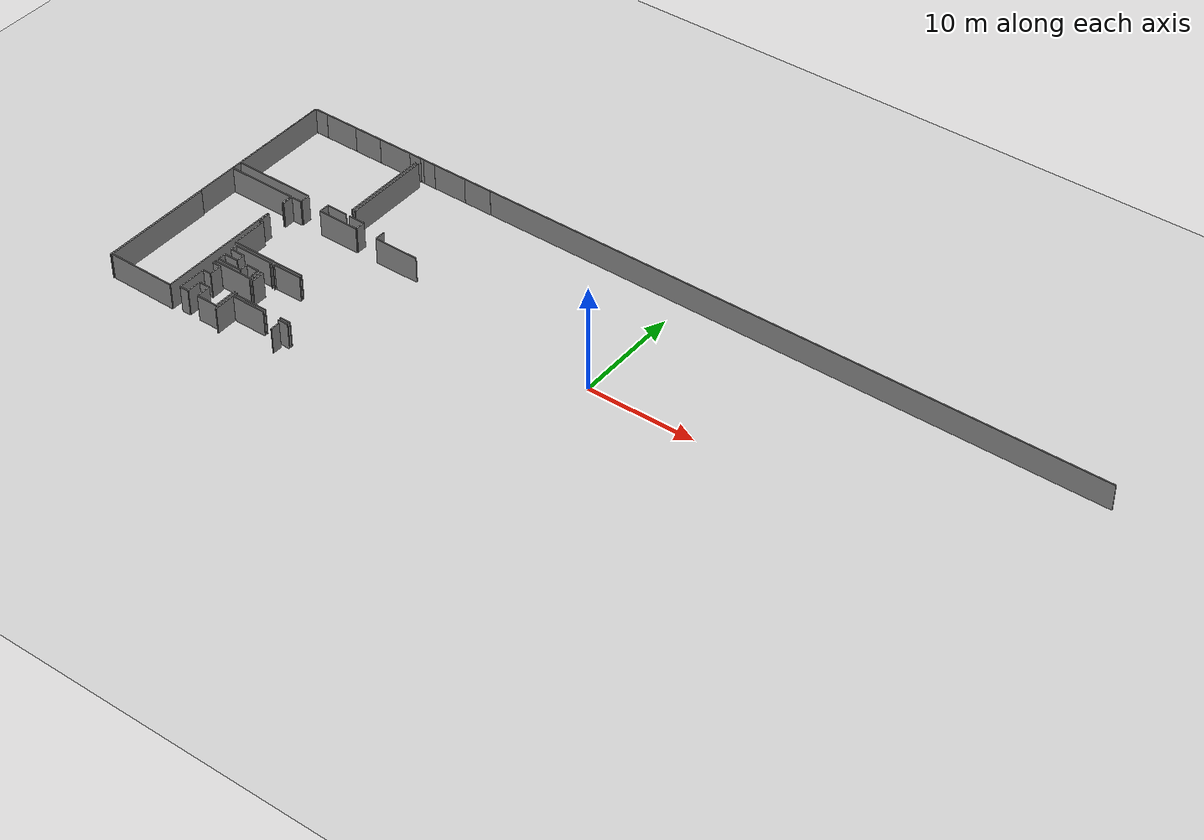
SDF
<sdf version="1.6">
 <world name="default">
  <model name="ground_plane">
   <static>1</static>
   <link name="link">
    <collision name="collision">
     <geometry><plane><normal>0 0 1</normal><size>100 100</size></plane></geometry>
     <surface><friction><ode><mu>100</mu><mu2>50</mu2></ode></friction></surface>
    </collision>
    <visual name="visual">
     <cast_shadows>0</cast_shadows>
     <geometry><plane><normal>0 0 1</normal><size>100 100</size></plane></geometry>
     <material>
      <script><uri>file://media/materials/scripts/gazebo.material</uri><name>Gazebo/Grey</name></script>
     </material>
    </visual>
   </link>
  </model>
  <model name="50052754">
   <static>1</static>
   <link name="Wall_0">
    <collision name="Wall_0_Collision">
     <geometry><box><size>7.62610542331 0.1 2.5</size></box></geometry>
     <pose>3.81305271165 0 1.25 0 0 0</pose>
    </collision>
    <visual name="Wall_0_Visual">
     <pose>3.81305271165 0 1.25 0 0 0</pose>
     <geometry><box><size>7.62610542331 0.1 2.5</size></box></geometry>
     <material>
      <script><uri>file://media/materials/scripts/gazebo.material</uri><name>Gazebo/Grey</name></script>
      <ambient>1 1 1 1</ambient>
     </material>
    </visual>
    <pose>0.0196519699515 -9.60017750166 0 0 0 0.0</pose>
   </link>
   <link name="Wall_1">
    <collision name="Wall_1_Collision">
     <geometry><box><size>0.898919141653 0.1 2.5</size></box></geometry>
     <pose>0.449459570826 0 1.25 0 0 0</pose>
    </collision>
    <visual name="Wall_1_Visual">
     <pose>0.449459570826 0 1.25 0 0 0</pose>
     <geometry><box><size>0.898919141653 0.1 2.5</size></box></geometry>
     <material>
      <script><uri>file://media/materials/scripts/gazebo.material</uri><name>Gazebo/Grey</name></script>
      <ambient>1 1 1 1</ambient>
     </material>
    </visual>
    <pose>7.64575739326 -9.60017750166 0 0 0 -1.57079632679</pose>
   </link>
   <link name="Wall_2">
    <collision name="Wall_2_Collision">
     <geometry><box><size>0.898919141653 0.1 2.5</size></box></geometry>
     <pose>0.449459570826 0 1.25 0 0 0</pose>
    </collision>
    <visual name="Wall_2_Visual">
     <pose>0.449459570826 0 1.25 0 0 0</pose>
     <geometry><box><size>0.898919141653 0.1 2.5</size></box></geometry>
     <material>
      <script><uri>file://media/materials/scripts/gazebo.material</uri><name>Gazebo/Grey</name></script>
      <ambient>1 1 1 1</ambient>
     </material>
    </visual>
    <pose>9.77691844432 -10.4990966433 0 0 0 1.57079632679</pose>
   </link>
   <link name="Wall_3">
    <collision name="Wall_3_Collision">
     <geometry><box><size>1.99131509715 0.1 2.5</size></box></geometry>
     <pose>0.995657548575 0 1.25 0 0 0</pose>
    </collision>
    <visual name="Wall_3_Visual">
     <pose>0.995657548575 0 1.25 0 0 0</pose>
     <geometry><box><size>1.99131509715 0.1 2.5</size></box></geometry>
     <material>
      <script><uri>file://media/materials/scripts/gazebo.material</uri><name>Gazebo/Grey</name></script>
      <ambient>1 1 1 1</ambient>
     </material>
    </visual>
    <pose>9.77691844432 -9.60017750166 0 0 0 0.0</pose>
   </link>
   <link name="Wall_4">
    <collision name="Wall_4_Collision">
     <geometry><box><size>8.11994041016 0.1 2.5</size></box></geometry>
     <pose>4.05997020508 0 1.25 0 0 0</pose>
    </collision>
    <visual name="Wall_4_Visual">
     <pose>4.05997020508 0 1.25 0 0 0</pose>
     <geometry><box><size>8.11994041016 0.1 2.5</size></box></geometry>
     <material>
      <script><uri>file://media/materials/scripts/gazebo.material</uri><name>Gazebo/Grey</name></script>
      <ambient>1 1 1 1</ambient>
     </material>
    </visual>
    <pose>11.7682335415 -8.86494025167 0 0 0 1.57079632679</pose>
   </link>
   <link name="Wall_5">
    <collision name="Wall_5_Collision">
     <geometry><box><size>1.19598085518 0.1 2.5</size></box></geometry>
     <pose>0.597990427589 0 1.25 0 0 0</pose>
    </collision>
    <visual name="Wall_5_Visual">
     <pose>0.597990427589 0 1.25 0 0 0</pose>
     <geometry><box><size>1.19598085518 0.1 2.5</size></box></geometry>
     <material>
      <script><uri>file://media/materials/scripts/gazebo.material</uri><name>Gazebo/Grey</name></script>
      <ambient>1 1 1 1</ambient>
     </material>
    </visual>
    <pose>11.7682335415 -0.00621255824273 0 0 0 3.14159265359</pose>
   </link>
   <link name="Wall_6">
    <collision name="Wall_6_Collision">
     <geometry><box><size>2.73111667565 0.1 2.5</size></box></geometry>
     <pose>1.36555833782 0 1.25 0 0 0</pose>
    </collision>
    <visual name="Wall_6_Visual">
     <pose>1.36555833782 0 1.25 0 0 0</pose>
     <geometry><box><size>2.73111667565 0.1 2.5</size></box></geometry>
     <material>
      <script><uri>file://media/materials/scripts/gazebo.material</uri><name>Gazebo/Grey</name></script>
      <ambient>1 1 1 1</ambient>
     </material>
    </visual>
    <pose>7.28783796634 -0.00621255824273 0 0 0 3.14159265359</pose>
   </link>
   <link name="Wall_7">
    <collision name="Wall_7_Collision">
     <geometry><box><size>1.3012139846 0.1 2.5</size></box></geometry>
     <pose>0.650606992298 0 1.25 0 0 0</pose>
    </collision>
    <visual name="Wall_7_Visual">
     <pose>0.650606992298 0 1.25 0 0 0</pose>
     <geometry><box><size>1.3012139846 0.1 2.5</size></box></geometry>
     <material>
      <script><uri>file://media/materials/scripts/gazebo.material</uri><name>Gazebo/Grey</name></script>
      <ambient>1 1 1 1</ambient>
     </material>
    </visual>
    <pose>1.3012139846 -0.00621255824273 0 0 0 3.14159265359</pose>
   </link>
   <link name="Wall_8">
    <collision name="Wall_8_Collision">
     <geometry><box><size>9.59398507063 0.1 2.5</size></box></geometry>
     <pose>4.79699253532 0 1.25 0 0 0</pose>
    </collision>
    <visual name="Wall_8_Visual">
     <pose>4.79699253532 0 1.25 0 0 0</pose>
     <geometry><box><size>9.59398507063 0.1 2.5</size></box></geometry>
     <material>
      <script><uri>file://media/materials/scripts/gazebo.material</uri><name>Gazebo/Grey</name></script>
      <ambient>1 1 1 1</ambient>
     </material>
    </visual>
    <pose>0.0 -0.00621255824273 0 0 0 -1.56874796175</pose>
   </link>
   <link name="Wall_9">
    <collision name="Wall_9_Collision">
     <geometry><box><size>8.12982978858 0.1 2.5</size></box></geometry>
     <pose>4.06491489429 0 1.25 0 0 0</pose>
    </collision>
    <visual name="Wall_9_Visual">
     <pose>4.06491489429 0 1.25 0 0 0</pose>
     <geometry><box><size>8.12982978858 0.1 2.5</size></box></geometry>
     <material>
      <script><uri>file://media/materials/scripts/gazebo.material</uri><name>Gazebo/Grey</name></script>
      <ambient>1 1 1 1</ambient>
     </material>
    </visual>
    <pose>12.0749310596 -8.86798313734 0 0 0 1.57079632679</pose>
   </link>
   <link name="Wall_10">
    <collision name="Wall_10_Collision">
     <geometry><box><size>1.21106849662 0.1 2.5</size></box></geometry>
     <pose>0.605534248312 0 1.25 0 0 0</pose>
    </collision>
    <visual name="Wall_10_Visual">
     <pose>0.605534248312 0 1.25 0 0 0</pose>
     <geometry><box><size>1.21106849662 0.1 2.5</size></box></geometry>
     <material>
      <script><uri>file://media/materials/scripts/gazebo.material</uri><name>Gazebo/Grey</name></script>
      <ambient>1 1 1 1</ambient>
     </material>
    </visual>
    <pose>12.0749310596 -0.00456432850487 0 0 0 0.0</pose>
   </link>
   <link name="Wall_11">
    <collision name="Wall_11_Collision">
     <geometry><box><size>2.72718628166 0.1 2.5</size></box></geometry>
     <pose>1.36359314083 0 1.25 0 0 0</pose>
    </collision>
    <visual name="Wall_11_Visual">
     <pose>1.36359314083 0 1.25 0 0 0</pose>
     <geometry><box><size>2.72718628166 0.1 2.5</size></box></geometry>
     <material>
      <script><uri>file://media/materials/scripts/gazebo.material</uri><name>Gazebo/Grey</name></script>
      <ambient>1 1 1 1</ambient>
     </material>
    </visual>
    <pose>16.535421091 -0.00456432850487 0 0 0 0.0</pose>
   </link>
   <link name="Wall_18">
    <collision name="Wall_18_Collision">
     <geometry><box><size>0.916035373546 0.1 2.5</size></box></geometry>
     <pose>0.458017686773 0 1.25 0 0 0</pose>
    </collision>
    <visual name="Wall_18_Visual">
     <pose>0.458017686773 0 1.25 0 0 0</pose>
     <geometry><box><size>0.916035373546 0.1 2.5</size></box></geometry>
     <material>
      <script><uri>file://media/materials/scripts/gazebo.material</uri><name>Gazebo/Grey</name></script>
      <ambient>1 1 1 1</ambient>
     </material>
    </visual>
    <pose>15.791055184 -9.60322038733 0 0 0 -1.57079632679</pose>
   </link>
   <link name="Wall_19">
    <collision name="Wall_19_Collision">
     <geometry><box><size>0.91185140575 0.1 2.5</size></box></geometry>
     <pose>0.455925702875 0 1.25 0 0 0</pose>
    </collision>
    <visual name="Wall_19_Visual">
     <pose>0.455925702875 0 1.25 0 0 0</pose>
     <geometry><box><size>0.91185140575 0.1 2.5</size></box></geometry>
     <material>
      <script><uri>file://media/materials/scripts/gazebo.material</uri><name>Gazebo/Grey</name></script>
      <ambient>1 1 1 1</ambient>
     </material>
    </visual>
    <pose>13.6631905924 -10.5192557609 0 0 0 1.57079632679</pose>
   </link>
   <link name="Wall_20">
    <collision name="Wall_20_Collision">
     <geometry><box><size>1.58827597442 0.1 2.5</size></box></geometry>
     <pose>0.794137987208 0 1.25 0 0 0</pose>
    </collision>
    <visual name="Wall_20_Visual">
     <pose>0.794137987208 0 1.25 0 0 0</pose>
     <geometry><box><size>1.58827597442 0.1 2.5</size></box></geometry>
     <material>
      <script><uri>file://media/materials/scripts/gazebo.material</uri><name>Gazebo/Grey</name></script>
      <ambient>1 1 1 1</ambient>
     </material>
    </visual>
    <pose>13.6631905924 -9.60740435513 0 0 0 3.13704251336</pose>
   </link>
   <link name="Wall_21">
    <collision name="Wall_21_Collision">
     <geometry><box><size>10.435576405 0.1 2.5</size></box></geometry>
     <pose>5.21778820248 0 1.25 0 0 0</pose>
    </collision>
    <visual name="Wall_21_Visual">
     <pose>5.21778820248 0 1.25 0 0 0</pose>
     <geometry><box><size>10.435576405 0.1 2.5</size></box></geometry>
     <material>
      <script><uri>file://media/materials/scripts/gazebo.material</uri><name>Gazebo/Grey</name></script>
      <ambient>1 1 1 1</ambient>
     </material>
    </visual>
    <pose>0.0877365368157 -24.9205997021 0 0 0 1.57079632679</pose>
   </link>
   <link name="Wall_22">
    <collision name="Wall_22_Collision">
     <geometry><box><size>6.44077466798 0.1 2.5</size></box></geometry>
     <pose>3.22038733399 0 1.25 0 0 0</pose>
    </collision>
    <visual name="Wall_22_Visual">
     <pose>3.22038733399 0 1.25 0 0 0</pose>
     <geometry><box><size>6.44077466798 0.1 2.5</size></box></geometry>
     <material>
      <script><uri>file://media/materials/scripts/gazebo.material</uri><name>Gazebo/Grey</name></script>
      <ambient>1 1 1 1</ambient>
     </material>
    </visual>
    <pose>0.0877365368157 -10.5570382579 0 0 0 0.0</pose>
   </link>
   <link name="Wall_23">
    <collision name="Wall_23_Collision">
     <geometry><box><size>1.06868680465 0.1 2.5</size></box></geometry>
     <pose>0.534343402327 0 1.25 0 0 0</pose>
    </collision>
    <visual name="Wall_23_Visual">
     <pose>0.534343402327 0 1.25 0 0 0</pose>
     <geometry><box><size>1.06868680465 0.1 2.5</size></box></geometry>
     <material>
      <script><uri>file://media/materials/scripts/gazebo.material</uri><name>Gazebo/Grey</name></script>
      <ambient>1 1 1 1</ambient>
     </material>
    </visual>
    <pose>6.52851120479 -10.5570382579 0 0 0 -1.57079632679</pose>
   </link>
   <link name="Wall_24">
    <collision name="Wall_24_Collision">
     <geometry><box><size>11.5982123047 0.1 2.5</size></box></geometry>
     <pose>5.79910615233 0 1.25 0 0 0</pose>
    </collision>
    <visual name="Wall_24_Visual">
     <pose>5.79910615233 0 1.25 0 0 0</pose>
     <geometry><box><size>11.5982123047 0.1 2.5</size></box></geometry>
     <material>
      <script><uri>file://media/materials/scripts/gazebo.material</uri><name>Gazebo/Grey</name></script>
      <ambient>1 1 1 1</ambient>
     </material>
    </visual>
    <pose>6.52851120479 -13.3700592729 0 0 0 -1.57079632679</pose>
   </link>
   <link name="Wall_25">
    <collision name="Wall_25_Collision">
     <geometry><box><size>6.44095108904 0.1 2.5</size></box></geometry>
     <pose>3.22047554452 0 1.25 0 0 0</pose>
    </collision>
    <visual name="Wall_25_Visual">
     <pose>3.22047554452 0 1.25 0 0 0</pose>
     <geometry><box><size>6.44095108904 0.1 2.5</size></box></geometry>
     <material>
      <script><uri>file://media/materials/scripts/gazebo.material</uri><name>Gazebo/Grey</name></script>
      <ambient>1 1 1 1</ambient>
     </material>
    </visual>
    <pose>6.52851120479 -24.9682715775 0 0 0 3.13419121394</pose>
   </link>
   <link name="Wall_26">
    <collision name="Wall_26_Collision">
     <geometry><box><size>3.30837744461 0.1 2.5</size></box></geometry>
     <pose>1.6541887223 0 1.25 0 0 0</pose>
    </collision>
    <visual name="Wall_26_Visual">
     <pose>1.6541887223 0 1.25 0 0 0</pose>
     <geometry><box><size>3.30837744461 0.1 2.5</size></box></geometry>
     <material>
      <script><uri>file://media/materials/scripts/gazebo.material</uri><name>Gazebo/Grey</name></script>
      <ambient>1 1 1 1</ambient>
     </material>
    </visual>
    <pose>6.9903958921 -17.7928935941 0 0 0 1.57079632679</pose>
   </link>
   <link name="Wall_27">
    <collision name="Wall_27_Collision">
     <geometry><box><size>0.326983422612 0.1 2.5</size></box></geometry>
     <pose>0.163491711306 0 1.25 0 0 0</pose>
    </collision>
    <visual name="Wall_27_Visual">
     <pose>0.163491711306 0 1.25 0 0 0</pose>
     <geometry><box><size>0.326983422612 0.1 2.5</size></box></geometry>
     <material>
      <script><uri>file://media/materials/scripts/gazebo.material</uri><name>Gazebo/Grey</name></script>
      <ambient>1 1 1 1</ambient>
     </material>
    </visual>
    <pose>6.9903958921 -14.4845161495 0 0 0 3.14159265359</pose>
   </link>
   <link name="Wall_28">
    <collision name="Wall_28_Collision">
     <geometry><box><size>1.09708707091 0.1 2.5</size></box></geometry>
     <pose>0.548543535453 0 1.25 0 0 0</pose>
    </collision>
    <visual name="Wall_28_Visual">
     <pose>0.548543535453 0 1.25 0 0 0</pose>
     <geometry><box><size>1.09708707091 0.1 2.5</size></box></geometry>
     <material>
      <script><uri>file://media/materials/scripts/gazebo.material</uri><name>Gazebo/Grey</name></script>
      <ambient>1 1 1 1</ambient>
     </material>
    </visual>
    <pose>6.66341246949 -14.4845161495 0 0 0 1.57079632679</pose>
   </link>
   <link name="Wall_29">
    <collision name="Wall_29_Collision">
     <geometry><box><size>1.06767250943 0.1 2.5</size></box></geometry>
     <pose>0.533836254715 0 1.25 0 0 0</pose>
    </collision>
    <visual name="Wall_29_Visual">
     <pose>0.533836254715 0 1.25 0 0 0</pose>
     <geometry><box><size>1.06767250943 0.1 2.5</size></box></geometry>
     <material>
      <script><uri>file://media/materials/scripts/gazebo.material</uri><name>Gazebo/Grey</name></script>
      <ambient>1 1 1 1</ambient>
     </material>
    </visual>
    <pose>6.66341246949 -11.6342197851 0 0 0 1.57079632679</pose>
   </link>
   <link name="Wall_30">
    <collision name="Wall_30_Collision">
     <geometry><box><size>0.96801800374 0.1 2.5</size></box></geometry>
     <pose>0.48400900187 0 1.25 0 0 0</pose>
    </collision>
    <visual name="Wall_30_Visual">
     <pose>0.48400900187 0 1.25 0 0 0</pose>
     <geometry><box><size>0.96801800374 0.1 2.5</size></box></geometry>
     <material>
      <script><uri>file://media/materials/scripts/gazebo.material</uri><name>Gazebo/Grey</name></script>
      <ambient>1 1 1 1</ambient>
     </material>
    </visual>
    <pose>6.66341246949 -10.5665472757 0 0 0 0.0</pose>
   </link>
   <link name="Wall_31">
    <collision name="Wall_31_Collision">
     <geometry><box><size>3.87942565533 0.1 2.5</size></box></geometry>
     <pose>1.93971282766 0 1.25 0 0 0</pose>
    </collision>
    <visual name="Wall_31_Visual">
     <pose>1.93971282766 0 1.25 0 0 0</pose>
     <geometry><box><size>3.87942565533 0.1 2.5</size></box></geometry>
     <material>
      <script><uri>file://media/materials/scripts/gazebo.material</uri><name>Gazebo/Grey</name></script>
      <ambient>1 1 1 1</ambient>
     </material>
    </visual>
    <pose>9.7713398206 -10.5665472757 0 0 0 0.0</pose>
   </link>
   <link name="Wall_32">
    <collision name="Wall_32_Collision">
     <geometry><box><size>4.22720213002 0.1 2.5</size></box></geometry>
     <pose>2.11360106501 0 1.25 0 0 0</pose>
    </collision>
    <visual name="Wall_32_Visual">
     <pose>2.11360106501 0 1.25 0 0 0</pose>
     <geometry><box><size>4.22720213002 0.1 2.5</size></box></geometry>
     <material>
      <script><uri>file://media/materials/scripts/gazebo.material</uri><name>Gazebo/Grey</name></script>
      <ambient>1 1 1 1</ambient>
     </material>
    </visual>
    <pose>15.802846366 -10.5665472757 0 0 0 0.0</pose>
   </link>
   <link name="Wall_38">
    <collision name="Wall_38_Collision">
     <geometry><box><size>7.16105537787 0.1 2.5</size></box></geometry>
     <pose>3.58052768894 0 1.25 0 0 0</pose>
    </collision>
    <visual name="Wall_38_Visual">
     <pose>3.58052768894 0 1.25 0 0 0</pose>
     <geometry><box><size>7.16105537787 0.1 2.5</size></box></geometry>
     <material>
      <script><uri>file://media/materials/scripts/gazebo.material</uri><name>Gazebo/Grey</name></script>
      <ambient>1 1 1 1</ambient>
     </material>
    </visual>
    <pose>14.1514469555 -17.7850328061 0 0 0 -3.14049493976</pose>
   </link>
   <link name="Wall_44">
    <collision name="Wall_44_Collision">
     <geometry><box><size>3.26945386542 0.1 2.5</size></box></geometry>
     <pose>1.63472693271 0 1.25 0 0 0</pose>
    </collision>
    <visual name="Wall_44_Visual">
     <pose>1.63472693271 0 1.25 0 0 0</pose>
     <geometry><box><size>3.26945386542 0.1 2.5</size></box></geometry>
     <material>
      <script><uri>file://media/materials/scripts/gazebo.material</uri><name>Gazebo/Grey</name></script>
      <ambient>1 1 1 1</ambient>
     </material>
    </visual>
    <pose>11.4441662176 -22.7137468699 0 0 0 0.0</pose>
   </link>
   <link name="Wall_45">
    <collision name="Wall_45_Collision">
     <geometry><box><size>1.03445434087 0.1 2.5</size></box></geometry>
     <pose>0.517227170433 0 1.25 0 0 0</pose>
    </collision>
    <visual name="Wall_45_Visual">
     <pose>0.517227170433 0 1.25 0 0 0</pose>
     <geometry><box><size>1.03445434087 0.1 2.5</size></box></geometry>
     <material>
      <script><uri>file://media/materials/scripts/gazebo.material</uri><name>Gazebo/Grey</name></script>
      <ambient>1 1 1 1</ambient>
     </material>
    </visual>
    <pose>16.270309677 -22.7137468699 0 0 0 0.0</pose>
   </link>
   <link name="Wall_49">
    <collision name="Wall_49_Collision">
     <geometry><box><size>2.70258962249 0.1 2.5</size></box></geometry>
     <pose>1.35129481125 0 1.25 0 0 0</pose>
    </collision>
    <visual name="Wall_49_Visual">
     <pose>1.35129481125 0 1.25 0 0 0</pose>
     <geometry><box><size>2.70258962249 0.1 2.5</size></box></geometry>
     <material>
      <script><uri>file://media/materials/scripts/gazebo.material</uri><name>Gazebo/Grey</name></script>
      <ambient>1 1 1 1</ambient>
     </material>
    </visual>
    <pose>14.1752828933 -18.0639639925 0 0 0 3.14159265359</pose>
   </link>
   <link name="Wall_50">
    <collision name="Wall_50_Collision">
     <geometry><box><size>0.214523439729 0.1 2.5</size></box></geometry>
     <pose>0.107261719864 0 1.25 0 0 0</pose>
    </collision>
    <visual name="Wall_50_Visual">
     <pose>0.107261719864 0 1.25 0 0 0</pose>
     <geometry><box><size>0.214523439729 0.1 2.5</size></box></geometry>
     <material>
      <script><uri>file://media/materials/scripts/gazebo.material</uri><name>Gazebo/Grey</name></script>
      <ambient>1 1 1 1</ambient>
     </material>
    </visual>
    <pose>11.4726932708 -18.0639639925 0 0 0 -1.57079632679</pose>
   </link>
   <link name="Wall_51">
    <collision name="Wall_51_Collision">
     <geometry><box><size>1.28904244192 0.1 2.5</size></box></geometry>
     <pose>0.644521220958 0 1.25 0 0 0</pose>
    </collision>
    <visual name="Wall_51_Visual">
     <pose>0.644521220958 0 1.25 0 0 0</pose>
     <geometry><box><size>1.28904244192 0.1 2.5</size></box></geometry>
     <material>
      <script><uri>file://media/materials/scripts/gazebo.material</uri><name>Gazebo/Grey</name></script>
      <ambient>1 1 1 1</ambient>
     </material>
    </visual>
    <pose>11.4726932708 -19.4303464452 0 0 0 -1.57079632679</pose>
   </link>
   <link name="Wall_52">
    <collision name="Wall_52_Collision">
     <geometry><box><size>0.218800034224 0.1 2.5</size></box></geometry>
     <pose>0.109400017112 0 1.25 0 0 0</pose>
    </collision>
    <visual name="Wall_52_Visual">
     <pose>0.109400017112 0 1.25 0 0 0</pose>
     <geometry><box><size>0.218800034224 0.1 2.5</size></box></geometry>
     <material>
      <script><uri>file://media/materials/scripts/gazebo.material</uri><name>Gazebo/Grey</name></script>
      <ambient>1 1 1 1</ambient>
     </material>
    </visual>
    <pose>11.4726932708 -22.4968144791 0 0 0 -1.70154812908</pose>
   </link>
   <link name="Wall_60">
    <collision name="Wall_60_Collision">
     <geometry><box><size>2.01832070747 0.1 2.5</size></box></geometry>
     <pose>1.00916035374 0 1.25 0 0 0</pose>
    </collision>
    <visual name="Wall_60_Visual">
     <pose>1.00916035374 0 1.25 0 0 0</pose>
     <geometry><box><size>2.01832070747 0.1 2.5</size></box></geometry>
     <material>
      <script><uri>file://media/materials/scripts/gazebo.material</uri><name>Gazebo/Grey</name></script>
      <ambient>1 1 1 1</ambient>
     </material>
    </visual>
    <pose>11.498557799 -25.0040254842 0 0 0 1.57079632679</pose>
   </link>
   <link name="Wall_61">
    <collision name="Wall_61_Collision">
     <geometry><box><size>3.22558559701 0.1 2.5</size></box></geometry>
     <pose>1.6127927985 0 1.25 0 0 0</pose>
    </collision>
    <visual name="Wall_61_Visual">
     <pose>1.6127927985 0 1.25 0 0 0</pose>
     <geometry><box><size>3.22558559701 0.1 2.5</size></box></geometry>
     <material>
      <script><uri>file://media/materials/scripts/gazebo.material</uri><name>Gazebo/Grey</name></script>
      <ambient>1 1 1 1</ambient>
     </material>
    </visual>
    <pose>11.498557799 -22.9857047767 0 0 0 0.0</pose>
   </link>
   <link name="Wall_62">
    <collision name="Wall_62_Collision">
     <geometry><box><size>0.997559352119 0.1 2.5</size></box></geometry>
     <pose>0.498779676059 0 1.25 0 0 0</pose>
    </collision>
    <visual name="Wall_62_Visual">
     <pose>0.498779676059 0 1.25 0 0 0</pose>
     <geometry><box><size>0.997559352119 0.1 2.5</size></box></geometry>
     <material>
      <script><uri>file://media/materials/scripts/gazebo.material</uri><name>Gazebo/Grey</name></script>
      <ambient>1 1 1 1</ambient>
     </material>
    </visual>
    <pose>16.2917366636 -22.9857047767 0 0 0 0.0</pose>
   </link>
   <link name="Wall_65">
    <collision name="Wall_65_Collision">
     <geometry><box><size>0.882563631177 0.1 2.5</size></box></geometry>
     <pose>0.441281815588 0 1.25 0 0 0</pose>
    </collision>
    <visual name="Wall_65_Visual">
     <pose>0.441281815588 0 1.25 0 0 0</pose>
     <geometry><box><size>0.882563631177 0.1 2.5</size></box></geometry>
     <material>
      <script><uri>file://media/materials/scripts/gazebo.material</uri><name>Gazebo/Grey</name></script>
      <ambient>1 1 1 1</ambient>
     </material>
    </visual>
    <pose>16.6316523503 -23.3120542648 0 0 0 -1.57079632679</pose>
   </link>
   <link name="Wall_69">
    <collision name="Wall_69_Collision">
     <geometry><box><size>2.65669276364 0.1 2.5</size></box></geometry>
     <pose>1.32834638182 0 1.25 0 0 0</pose>
    </collision>
    <visual name="Wall_69_Visual">
     <pose>1.32834638182 0 1.25 0 0 0</pose>
     <geometry><box><size>2.65669276364 0.1 2.5</size></box></geometry>
     <material>
      <script><uri>file://media/materials/scripts/gazebo.material</uri><name>Gazebo/Grey</name></script>
      <ambient>1 1 1 1</ambient>
     </material>
    </visual>
    <pose>7.35085105709 -24.6567561571 0 0 0 1.57079632679</pose>
   </link>
   <link name="Wall_70">
    <collision name="Wall_70_Collision">
     <geometry><box><size>0.783289486196 0.1 2.5</size></box></geometry>
     <pose>0.391644743098 0 1.25 0 0 0</pose>
    </collision>
    <visual name="Wall_70_Visual">
     <pose>0.391644743098 0 1.25 0 0 0</pose>
     <geometry><box><size>0.783289486196 0.1 2.5</size></box></geometry>
     <material>
      <script><uri>file://media/materials/scripts/gazebo.material</uri><name>Gazebo/Grey</name></script>
      <ambient>1 1 1 1</ambient>
     </material>
    </visual>
    <pose>7.35085105709 -22.0000633935 0 0 0 0.0</pose>
   </link>
   <link name="Wall_71">
    <collision name="Wall_71_Collision">
     <geometry><box><size>1.16466449016 0.1 2.5</size></box></geometry>
     <pose>0.582332245079 0 1.25 0 0 0</pose>
    </collision>
    <visual name="Wall_71_Visual">
     <pose>0.582332245079 0 1.25 0 0 0</pose>
     <geometry><box><size>1.16466449016 0.1 2.5</size></box></geometry>
     <material>
      <script><uri>file://media/materials/scripts/gazebo.material</uri><name>Gazebo/Grey</name></script>
      <ambient>1 1 1 1</ambient>
     </material>
    </visual>
    <pose>8.13414054328 -22.0000633935 0 0 0 1.57079632679</pose>
   </link>
   <link name="Wall_72">
    <collision name="Wall_72_Collision">
     <geometry><box><size>0.787473453992 0.1 2.5</size></box></geometry>
     <pose>0.393736726996 0 1.25 0 0 0</pose>
    </collision>
    <visual name="Wall_72_Visual">
     <pose>0.393736726996 0 1.25 0 0 0</pose>
     <geometry><box><size>0.787473453992 0.1 2.5</size></box></geometry>
     <material>
      <script><uri>file://media/materials/scripts/gazebo.material</uri><name>Gazebo/Grey</name></script>
      <ambient>1 1 1 1</ambient>
     </material>
    </visual>
    <pose>8.13414054328 -20.8353989033 0 0 0 3.14159265359</pose>
   </link>
   <link name="Wall_73">
    <collision name="Wall_73_Collision">
     <geometry><box><size>0.298456369457 0.1 2.5</size></box></geometry>
     <pose>0.149228184729 0 1.25 0 0 0</pose>
    </collision>
    <visual name="Wall_73_Visual">
     <pose>0.149228184729 0 1.25 0 0 0</pose>
     <geometry><box><size>0.298456369457 0.1 2.5</size></box></geometry>
     <material>
      <script><uri>file://media/materials/scripts/gazebo.material</uri><name>Gazebo/Grey</name></script>
      <ambient>1 1 1 1</ambient>
     </material>
    </visual>
    <pose>7.34666708929 -20.8353989033 0 0 0 1.57079632679</pose>
   </link>
   <link name="Wall_74">
    <collision name="Wall_74_Collision">
     <geometry><box><size>3.85863260325 0.1 2.5</size></box></geometry>
     <pose>1.92931630163 0 1.25 0 0 0</pose>
    </collision>
    <visual name="Wall_74_Visual">
     <pose>1.92931630163 0 1.25 0 0 0</pose>
     <geometry><box><size>3.85863260325 0.1 2.5</size></box></geometry>
     <material>
      <script><uri>file://media/materials/scripts/gazebo.material</uri><name>Gazebo/Grey</name></script>
      <ambient>1 1 1 1</ambient>
     </material>
    </visual>
    <pose>7.34666708929 -20.5369425338 0 0 0 0.0</pose>
   </link>
   <link name="Wall_75">
    <collision name="Wall_75_Collision">
     <geometry><box><size>0.190687501981 0.1 2.5</size></box></geometry>
     <pose>0.0953437509905 0 1.25 0 0 0</pose>
    </collision>
    <visual name="Wall_75_Visual">
     <pose>0.0953437509905 0 1.25 0 0 0</pose>
     <geometry><box><size>0.190687501981 0.1 2.5</size></box></geometry>
     <material>
      <script><uri>file://media/materials/scripts/gazebo.material</uri><name>Gazebo/Grey</name></script>
      <ambient>1 1 1 1</ambient>
     </material>
    </visual>
    <pose>11.2052996925 -20.5369425338 0 0 0 -1.57079632679</pose>
   </link>
   <link name="Wall_76">
    <collision name="Wall_76_Collision">
     <geometry><box><size>2.18200259913 0.1 2.5</size></box></geometry>
     <pose>1.09100129957 0 1.25 0 0 0</pose>
    </collision>
    <visual name="Wall_76_Visual">
     <pose>1.09100129957 0 1.25 0 0 0</pose>
     <geometry><box><size>2.18200259913 0.1 2.5</size></box></geometry>
     <material>
      <script><uri>file://media/materials/scripts/gazebo.material</uri><name>Gazebo/Grey</name></script>
      <ambient>1 1 1 1</ambient>
     </material>
    </visual>
    <pose>11.2052996925 -22.4739928365 0 0 0 -1.57079632679</pose>
   </link>
   <link name="Wall_77">
    <collision name="Wall_77_Collision">
     <geometry><box><size>1.98713112935 0.1 2.5</size></box></geometry>
     <pose>0.993565564677 0 1.25 0 0 0</pose>
    </collision>
    <visual name="Wall_77_Visual">
     <pose>0.993565564677 0 1.25 0 0 0</pose>
     <geometry><box><size>1.98713112935 0.1 2.5</size></box></geometry>
     <material>
      <script><uri>file://media/materials/scripts/gazebo.material</uri><name>Gazebo/Grey</name></script>
      <ambient>1 1 1 1</ambient>
     </material>
    </visual>
    <pose>11.2052996925 -24.6559954357 0 0 0 3.14159265359</pose>
   </link>
   <link name="Wall_78">
    <collision name="Wall_78_Collision">
     <geometry><box><size>1.33468572696 0.1 2.5</size></box></geometry>
     <pose>0.667342863482 0 1.25 0 0 0</pose>
    </collision>
    <visual name="Wall_78_Visual">
     <pose>0.667342863482 0 1.25 0 0 0</pose>
     <geometry><box><size>1.33468572696 0.1 2.5</size></box></geometry>
     <material>
      <script><uri>file://media/materials/scripts/gazebo.material</uri><name>Gazebo/Grey</name></script>
      <ambient>1 1 1 1</ambient>
     </material>
    </visual>
    <pose>9.21816856319 -24.6559954357 0 0 0 1.57079632679</pose>
   </link>
   <link name="Wall_79">
    <collision name="Wall_79_Collision">
     <geometry><box><size>1.02950965165 0.1 2.5</size></box></geometry>
     <pose>0.514754825826 0 1.25 0 0 0</pose>
    </collision>
    <visual name="Wall_79_Visual">
     <pose>0.514754825826 0 1.25 0 0 0</pose>
     <geometry><box><size>1.02950965165 0.1 2.5</size></box></geometry>
     <material>
      <script><uri>file://media/materials/scripts/gazebo.material</uri><name>Gazebo/Grey</name></script>
      <ambient>1 1 1 1</ambient>
     </material>
    </visual>
    <pose>9.21816856319 -23.3213097087 0 0 0 3.14159265359</pose>
   </link>
   <link name="Wall_80">
    <collision name="Wall_80_Collision">
     <geometry><box><size>1.33937684237 0.1 2.5</size></box></geometry>
     <pose>0.669688421186 0 1.25 0 0 0</pose>
    </collision>
    <visual name="Wall_80_Visual">
     <pose>0.669688421186 0 1.25 0 0 0</pose>
     <geometry><box><size>1.33937684237 0.1 2.5</size></box></geometry>
     <material>
      <script><uri>file://media/materials/scripts/gazebo.material</uri><name>Gazebo/Grey</name></script>
      <ambient>1 1 1 1</ambient>
     </material>
    </visual>
    <pose>8.18865891153 -23.3213097087 0 0 0 -1.57079632679</pose>
   </link>
   <link name="Wall_81">
    <collision name="Wall_81_Collision">
     <geometry><box><size>0.837817073694 0.1 2.5</size></box></geometry>
     <pose>0.418908536847 0 1.25 0 0 0</pose>
    </collision>
    <visual name="Wall_81_Visual">
     <pose>0.418908536847 0 1.25 0 0 0</pose>
     <geometry><box><size>0.837817073694 0.1 2.5</size></box></geometry>
     <material>
      <script><uri>file://media/materials/scripts/gazebo.material</uri><name>Gazebo/Grey</name></script>
      <ambient>1 1 1 1</ambient>
     </material>
    </visual>
    <pose>8.18865891153 -24.6606865511 0 0 0 3.13690140471</pose>
   </link>
   <link name="Wall_82">
    <collision name="Wall_82_Collision">
     <geometry><box><size>0.757805318711 0.1 2.5</size></box></geometry>
     <pose>0.378902659355 0 1.25 0 0 0</pose>
    </collision>
    <visual name="Wall_82_Visual">
     <pose>0.378902659355 0 1.25 0 0 0</pose>
     <geometry><box><size>0.757805318711 0.1 2.5</size></box></geometry>
     <material>
      <script><uri>file://media/materials/scripts/gazebo.material</uri><name>Gazebo/Grey</name></script>
      <ambient>1 1 1 1</ambient>
     </material>
    </visual>
    <pose>7.35452787727 -20.2136359314 0 0 0 1.57079632679</pose>
   </link>
   <link name="Wall_83">
    <collision name="Wall_83_Collision">
     <geometry><box><size>1.33937684237 0.1 2.5</size></box></geometry>
     <pose>0.669688421186 0 1.25 0 0 0</pose>
    </collision>
    <visual name="Wall_83_Visual">
     <pose>0.669688421186 0 1.25 0 0 0</pose>
     <geometry><box><size>1.33937684237 0.1 2.5</size></box></geometry>
     <material>
      <script><uri>file://media/materials/scripts/gazebo.material</uri><name>Gazebo/Grey</name></script>
      <ambient>1 1 1 1</ambient>
     </material>
    </visual>
    <pose>7.35452787727 -19.4558306127 0 0 0 0.0</pose>
   </link>
   <link name="Wall_84">
    <collision name="Wall_84_Collision">
     <geometry><box><size>0.77213223874 0.1 2.5</size></box></geometry>
     <pose>0.38606611937 0 1.25 0 0 0</pose>
    </collision>
    <visual name="Wall_84_Visual">
     <pose>0.38606611937 0 1.25 0 0 0</pose>
     <geometry><box><size>0.77213223874 0.1 2.5</size></box></geometry>
     <material>
      <script><uri>file://media/materials/scripts/gazebo.material</uri><name>Gazebo/Grey</name></script>
      <ambient>1 1 1 1</ambient>
     </material>
    </visual>
    <pose>8.69390471964 -19.4558306127 0 0 0 1.57079632679</pose>
   </link>
   <link name="Wall_85">
    <collision name="Wall_85_Collision">
     <geometry><box><size>1.3537037624 0.1 2.5</size></box></geometry>
     <pose>0.676851881201 0 1.25 0 0 0</pose>
    </collision>
    <visual name="Wall_85_Visual">
     <pose>0.676851881201 0 1.25 0 0 0</pose>
     <geometry><box><size>1.3537037624 0.1 2.5</size></box></geometry>
     <material>
      <script><uri>file://media/materials/scripts/gazebo.material</uri><name>Gazebo/Grey</name></script>
      <ambient>1 1 1 1</ambient>
     </material>
    </visual>
    <pose>8.69390471964 -18.683698374 0 0 0 3.14159265359</pose>
   </link>
   <link name="Wall_86">
    <collision name="Wall_86_Collision">
     <geometry><box><size>0.59108054138 0.1 2.5</size></box></geometry>
     <pose>0.29554027069 0 1.25 0 0 0</pose>
    </collision>
    <visual name="Wall_86_Visual">
     <pose>0.29554027069 0 1.25 0 0 0</pose>
     <geometry><box><size>0.59108054138 0.1 2.5</size></box></geometry>
     <material>
      <script><uri>file://media/materials/scripts/gazebo.material</uri><name>Gazebo/Grey</name></script>
      <ambient>1 1 1 1</ambient>
     </material>
    </visual>
    <pose>7.34020095724 -18.683698374 0 0 0 1.57079632679</pose>
   </link>
   <link name="Wall_87">
    <collision name="Wall_87_Collision">
     <geometry><box><size>3.84646106057 0.1 2.5</size></box></geometry>
     <pose>1.92323053029 0 1.25 0 0 0</pose>
    </collision>
    <visual name="Wall_87_Visual">
     <pose>1.92323053029 0 1.25 0 0 0</pose>
     <geometry><box><size>3.84646106057 0.1 2.5</size></box></geometry>
     <material>
      <script><uri>file://media/materials/scripts/gazebo.material</uri><name>Gazebo/Grey</name></script>
      <ambient>1 1 1 1</ambient>
     </material>
    </visual>
    <pose>7.34020095724 -18.0926178326 0 0 0 0.0</pose>
   </link>
   <link name="Wall_88">
    <collision name="Wall_88_Collision">
     <geometry><box><size>0.190687501981 0.1 2.5</size></box></geometry>
     <pose>0.0953437509905 0 1.25 0 0 0</pose>
    </collision>
    <visual name="Wall_88_Visual">
     <pose>0.0953437509905 0 1.25 0 0 0</pose>
     <geometry><box><size>0.190687501981 0.1 2.5</size></box></geometry>
     <material>
      <script><uri>file://media/materials/scripts/gazebo.material</uri><name>Gazebo/Grey</name></script>
      <ambient>1 1 1 1</ambient>
     </material>
    </visual>
    <pose>11.1866620178 -18.0926178326 0 0 0 -1.57079632679</pose>
   </link>
   <link name="Wall_89">
    <collision name="Wall_89_Collision">
     <geometry><box><size>0.774794763701 0.1 2.5</size></box></geometry>
     <pose>0.38739738185 0 1.25 0 0 0</pose>
    </collision>
    <visual name="Wall_89_Visual">
     <pose>0.38739738185 0 1.25 0 0 0</pose>
     <geometry><box><size>0.774794763701 0.1 2.5</size></box></geometry>
     <material>
      <script><uri>file://media/materials/scripts/gazebo.material</uri><name>Gazebo/Grey</name></script>
      <ambient>1 1 1 1</ambient>
     </material>
    </visual>
    <pose>11.1866620178 -19.435798282 0 0 0 -1.57079632679</pose>
   </link>
   <link name="Wall_90">
    <collision name="Wall_90_Collision">
     <geometry><box><size>0.264731053282 0.1 2.5</size></box></geometry>
     <pose>0.132365526641 0 1.25 0 0 0</pose>
    </collision>
    <visual name="Wall_90_Visual">
     <pose>0.132365526641 0 1.25 0 0 0</pose>
     <geometry><box><size>0.264731053282 0.1 2.5</size></box></geometry>
     <material>
      <script><uri>file://media/materials/scripts/gazebo.material</uri><name>Gazebo/Grey</name></script>
      <ambient>1 1 1 1</ambient>
     </material>
    </visual>
    <pose>11.1866620178 -20.2105930457 0 0 0 3.14159265359</pose>
   </link>
   <link name="Wall_91">
    <collision name="Wall_91_Collision">
     <geometry><box><size>0.785698437351 0.1 2.5</size></box></geometry>
     <pose>0.392849218676 0 1.25 0 0 0</pose>
    </collision>
    <visual name="Wall_91_Visual">
     <pose>0.392849218676 0 1.25 0 0 0</pose>
     <geometry><box><size>0.785698437351 0.1 2.5</size></box></geometry>
     <material>
      <script><uri>file://media/materials/scripts/gazebo.material</uri><name>Gazebo/Grey</name></script>
      <ambient>1 1 1 1</ambient>
     </material>
    </visual>
    <pose>10.9219309645 -20.2105930457 0 0 0 1.57079632679</pose>
   </link>
   <link name="Wall_92">
    <collision name="Wall_92_Collision">
     <geometry><box><size>1.20739167644 0.1 2.5</size></box></geometry>
     <pose>0.60369583822 0 1.25 0 0 0</pose>
    </collision>
    <visual name="Wall_92_Visual">
     <pose>0.60369583822 0 1.25 0 0 0</pose>
     <geometry><box><size>1.20739167644 0.1 2.5</size></box></geometry>
     <material>
      <script><uri>file://media/materials/scripts/gazebo.material</uri><name>Gazebo/Grey</name></script>
      <ambient>1 1 1 1</ambient>
     </material>
    </visual>
    <pose>10.9219309645 -19.4248946084 0 0 0 3.14159265359</pose>
   </link>
   <link name="Wall_93">
    <collision name="Wall_93_Collision">
     <geometry><box><size>0.792925290817 0.1 2.5</size></box></geometry>
     <pose>0.396462645409 0 1.25 0 0 0</pose>
    </collision>
    <visual name="Wall_93_Visual">
     <pose>0.396462645409 0 1.25 0 0 0</pose>
     <geometry><box><size>0.792925290817 0.1 2.5</size></box></geometry>
     <material>
      <script><uri>file://media/materials/scripts/gazebo.material</uri><name>Gazebo/Grey</name></script>
      <ambient>1 1 1 1</ambient>
     </material>
    </visual>
    <pose>9.71453928809 -19.4248946084 0 0 0 -1.57079632679</pose>
   </link>
   <link name="Wall_94">
    <collision name="Wall_94_Collision">
     <geometry><box><size>2.36001511961 0.1 2.5</size></box></geometry>
     <pose>1.18000755981 0 1.25 0 0 0</pose>
    </collision>
    <visual name="Wall_94_Visual">
     <pose>1.18000755981 0 1.25 0 0 0</pose>
     <geometry><box><size>2.36001511961 0.1 2.5</size></box></geometry>
     <material>
      <script><uri>file://media/materials/scripts/gazebo.material</uri><name>Gazebo/Grey</name></script>
      <ambient>1 1 1 1</ambient>
     </material>
    </visual>
    <pose>9.71453928809 -20.2178198992 0 0 0 3.13981979631</pose>
   </link>
   <link name="Wall_260">
    <collision name="Wall_260_Collision">
     <geometry><box><size>25.0388918825 0.1 2.5</size></box></geometry>
     <pose>12.5194459412 0 1.25 0 0 0</pose>
    </collision>
    <visual name="Wall_260_Visual">
     <pose>12.5194459412 0 1.25 0 0 0</pose>
     <geometry><box><size>25.0388918825 0.1 2.5</size></box></geometry>
     <material>
      <script><uri>file://media/materials/scripts/gazebo.material</uri><name>Gazebo/Grey</name></script>
      <ambient>1 1 1 1</ambient>
     </material>
    </visual>
    <pose>0.0 -25.0388918825 0 0 0 1.57079632679</pose>
   </link>
   <link name="Wall_261">
    <collision name="Wall_261_Collision">
     <geometry><box><size>78.0531871058 0.1 2.5</size></box></geometry>
     <pose>39.0265935529 0 1.25 0 0 0</pose>
    </collision>
    <visual name="Wall_261_Visual">
     <pose>39.0265935529 0 1.25 0 0 0</pose>
     <geometry><box><size>78.0531871058 0.1 2.5</size></box></geometry>
     <material>
      <script><uri>file://media/materials/scripts/gazebo.material</uri><name>Gazebo/Grey</name></script>
      <ambient>1 1 1 1</ambient>
     </material>
    </visual>
   </link>
   <pose>-39.0 12.5388918825 0 0 0 0</pose>
  </model>
 </world>
</sdf>
